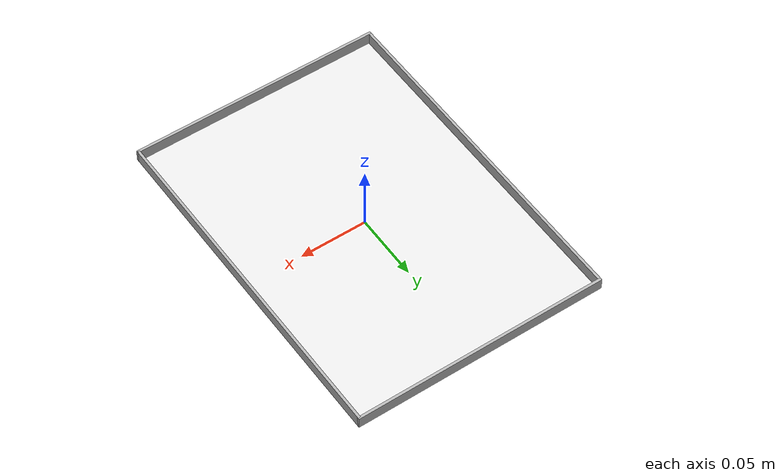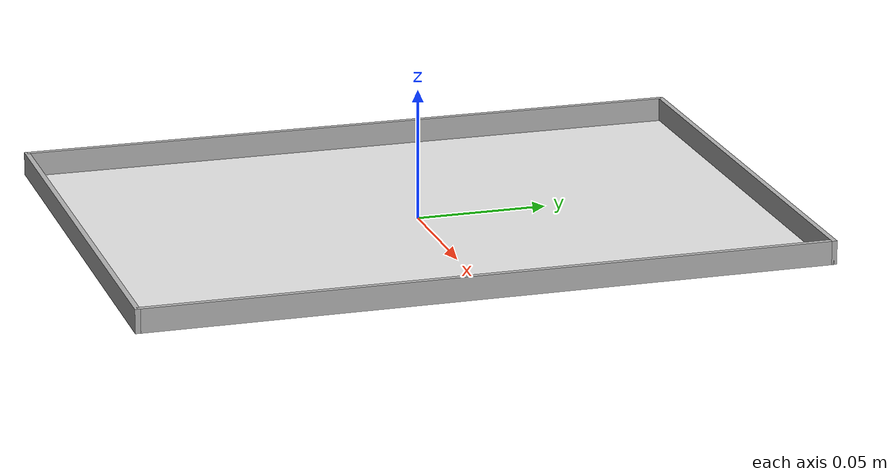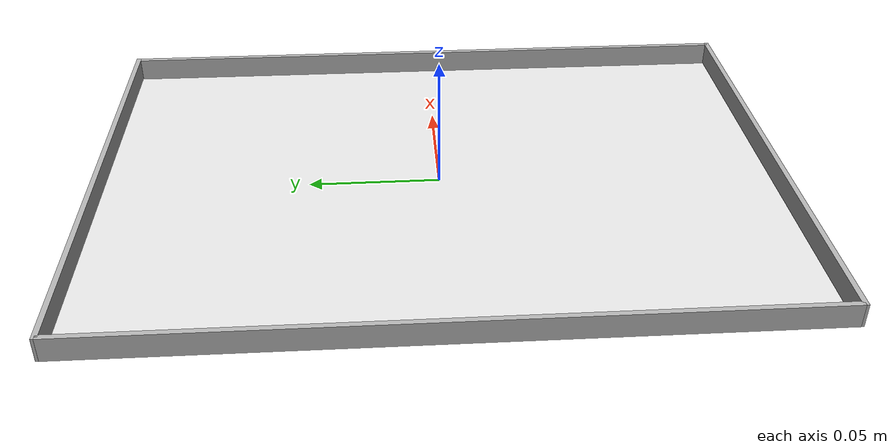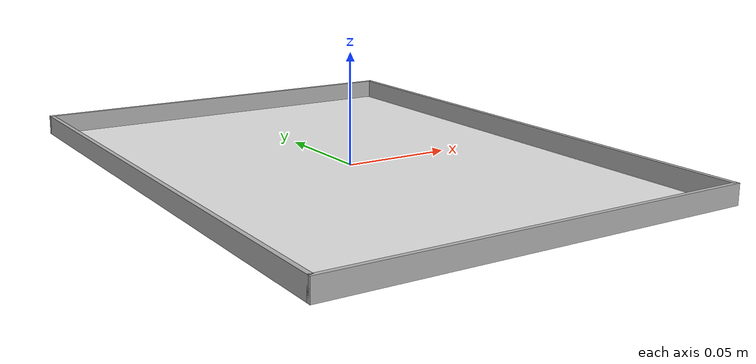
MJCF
<mujoco>
  <compiler angle="radian" autolimits="true"/>
  <asset>
    <texture name="texplate" type="2d" builtin="checker" rgb1=".9 .9 .9" rgb2=".9 0.9 0.9"
        width="512" height="512" mark="cross" markrgb=".1 .1 .1"/>
    <material name="matplate" reflectance="0." texture="texplate" texrepeat="10 14" texuniform="false"/>
  </asset>
  <worldbody>
    <geom type="box" size="0.001 0.1295 0.0045" pos="-0.0935 0 0.0045" rgba="0.7 0.7 0.7 1" />
    <geom type="box" size="0.001 0.1295 0.0045" pos="0.0935 0 0.0045" rgba="0.7 0.7 0.7 1"/>
    <geom type="box" size="0.0945 0.001 0.0045" pos="0 -0.1295 0.0045" rgba="0.7 0.7 0.7 1"/>
    <geom type="box" size="0.0945 0.001 0.0045" pos="0 0.1295 0.0045" rgba="0.7 0.7 0.7 1"/>
    <geom type="plane" size="0.0925 0.1295 0.0001" pos="0 0 0.0001" rgba="0.9 0.9 0.9 1" material="matplate" friction="2 0.05 0.001"/>
  </worldbody>
</mujoco>
